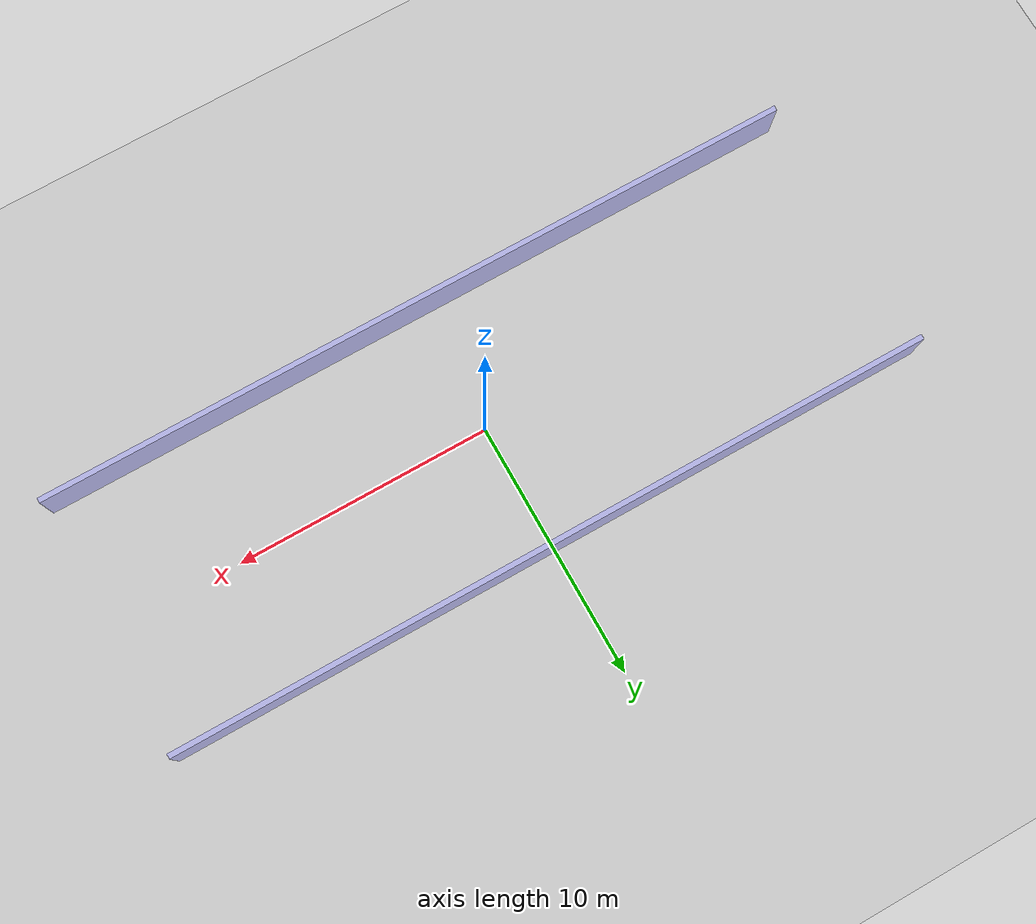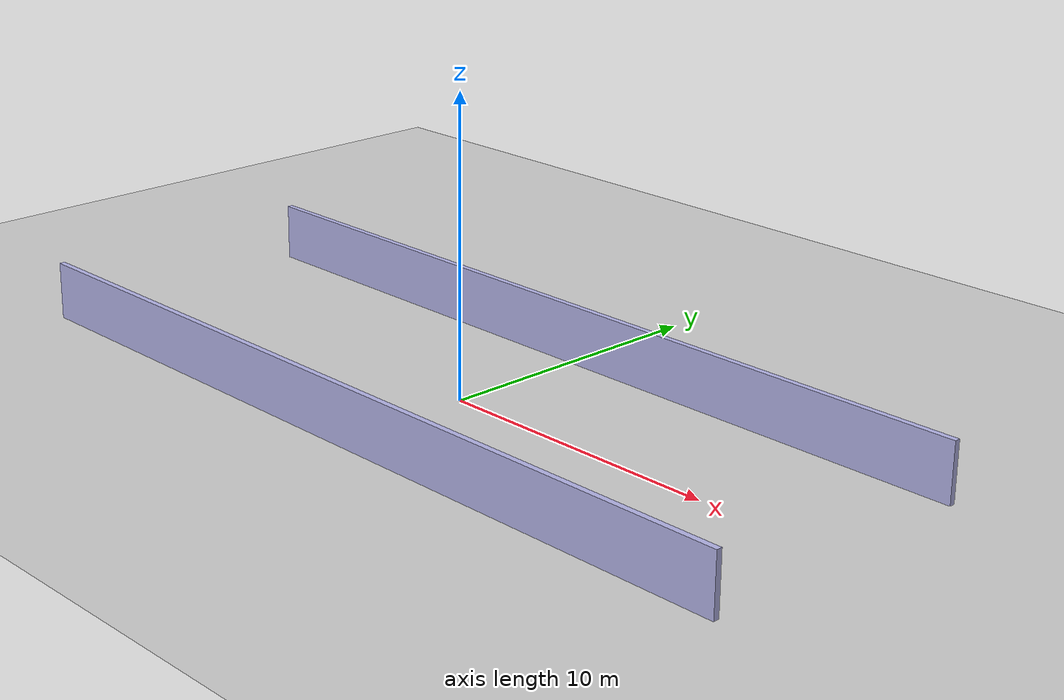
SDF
<?xml version="1.0"?>
<sdf version="1.6">
  <world name="hallway_moving_person">

    <physics type="ode">
      <max_step_size>0.001</max_step_size>
      <real_time_factor>1</real_time_factor>
      <real_time_update_rate>1000</real_time_update_rate>
    </physics>

    <light name="sun" type="directional">
      <cast_shadows>true</cast_shadows>
      <pose>0 0 10 0 0 0</pose>
      <diffuse>0.8 0.8 0.8 1</diffuse>
      <specular>0.2 0.2 0.2 1</specular>
      <attenuation>
        <range>1000</range>
        <constant>0.9</constant>
        <linear>0.01</linear>
        <quadratic>0.001</quadratic>
      </attenuation>
      <direction>-0.5 0.1 -0.9</direction>
    </light>

    <model name="ground_plane">
      <static>true</static>
      <link name="link">
        <collision name="collision">
          <geometry>
            <plane>
              <normal>0 0 1</normal>
              <size>100 100</size>
            </plane>
          </geometry>
        </collision>
        <visual name="visual">
          <geometry>
            <plane>
              <normal>0 0 1</normal>
              <size>100 100</size>
            </plane>
          </geometry>
          <material>
            <ambient>0.8 0.8 0.8 1</ambient>
            <diffuse>0.8 0.8 0.8 1</diffuse>
          </material>
        </visual>
      </link>
    </model>

    <model name="left_wall">
      <static>true</static>
      <pose>0 -5 1 0 0 0</pose>
      <link name="link">
        <collision name="collision">
          <geometry>
            <box>
              <size>30 0.2 2</size>
            </box>
          </geometry>
        </collision>
        <visual name="visual">
          <geometry>
            <box>
              <size>30 0.2 2</size>
            </box>
          </geometry>
          <material>
            <ambient>0.7 0.7 0.9 1</ambient>
            <diffuse>0.7 0.7 0.9 1</diffuse>
          </material>
        </visual>
      </link>
    </model>

    <model name="right_wall">
      <static>true</static>
      <pose>0 5 1 0 0 0</pose>
      <link name="link">
        <collision name="collision">
          <geometry>
            <box>
              <size>30 0.2 2</size>
            </box>
          </geometry>
        </collision>
        <visual name="visual">
          <geometry>
            <box>
              <size>30 0.2 2</size>
            </box>
          </geometry>
          <material>
            <ambient>0.7 0.7 0.9 1</ambient>
            <diffuse>0.7 0.7 0.9 1</diffuse>
          </material>
        </visual>
      </link>
    </model>

    <!-- Person crosses path (moves side to side) -->
    <model name="person_1">
      <pose>0 0 0 0 0 0</pose>
      <static>false</static>

      <link name="link">
        <inertial>
          <mass>5.0</mass>
          <inertia>
            <ixx>0.1</ixx><ixy>0</ixy><ixz>0</ixz>
            <iyy>0.1</iyy><iyz>0</iyz>
            <izz>0.1</izz>
          </inertia>
        </inertial>

        <!-- Collision box for LIDAR -->
        <collision name="collision">
          <geometry><box><size>0.5 0.5 1.8</size></box></geometry>
          <pose>0 0 0.9 0 0 0</pose>
        </collision>

        <!-- Human mesh visual -->
        <visual name="visual">
          <pose>0 0 0.9 0 0 0</pose>
          <geometry>
            <mesh>
              <uri>/usr/share/gazebo-11/media/models/stand.dae</uri>
              <scale>1.0 1.0 1.0</scale>
            </mesh>
          </geometry>
        </visual>
      </link>

      <plugin name="person_1_planar_move" filename="libgazebo_ros_planar_move.so">
        <ros>
          <namespace>person_1</namespace>
        </ros>
        <update_rate>50</update_rate>
        <publish_odom>false</publish_odom>
        <publish_odom_tf>false</publish_odom_tf>
      </plugin>
    </model>

  </world>
</sdf>
